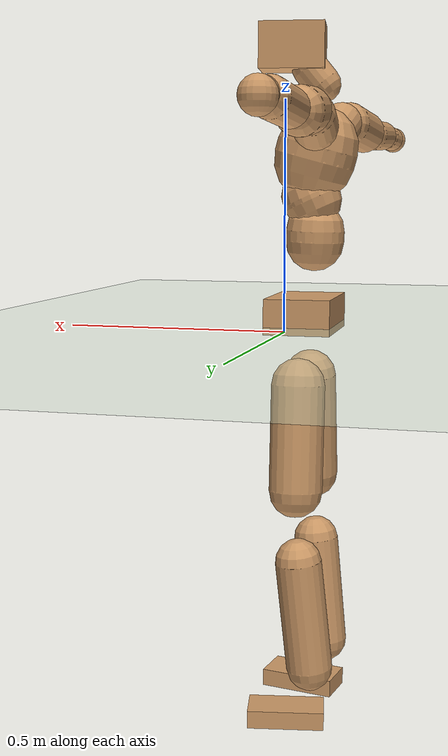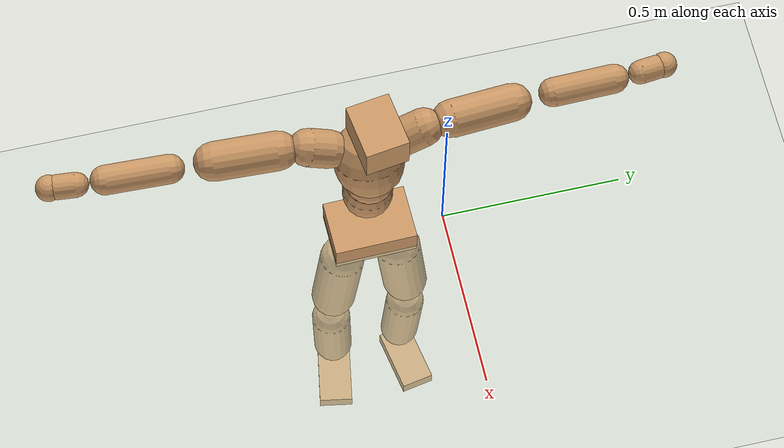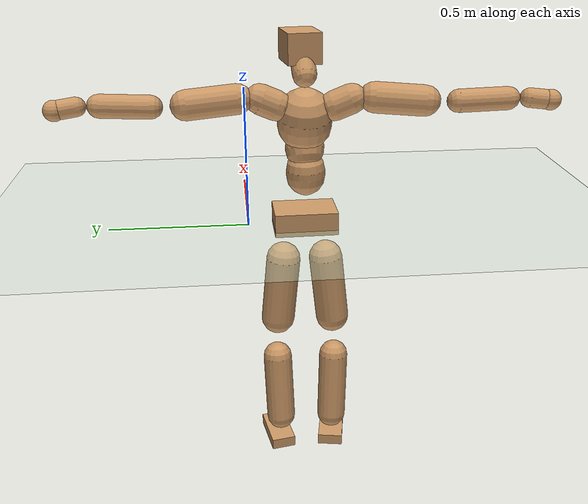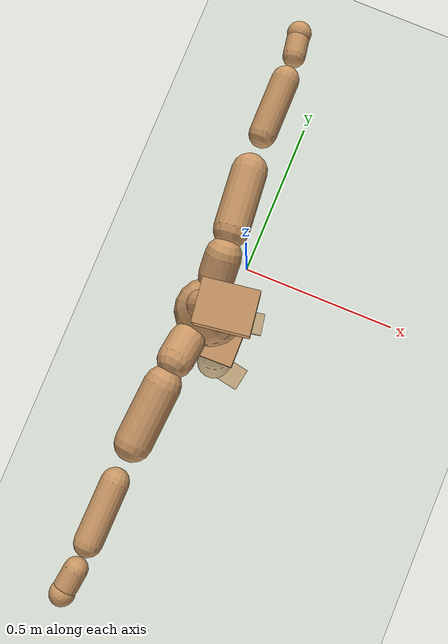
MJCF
<mujoco model="humanoid">
  <compiler coordinate="local" angle="radian"/>
  <default>
    <joint damping="0.0" armature="0.01" stiffness="0.0" limited="true"/>
    <geom conaffinity="1" condim="3" contype="7" margin="0.001" rgba="0.8 0.6 .4 1"/>
  </default>
  <asset>
    <texture type="skybox" builtin="gradient" rgb1=".4 .5 .6" rgb2="0 0 0" width="100" height="100"/>
    <texture builtin="flat" height="1278" mark="cross" markrgb="1 1 1" name="texgeom" random="0.01" rgb1="0.8 0.6 0.4" rgb2="0.8 0.6 0.4" type="cube" width="127"/>
    <texture builtin="checker" height="100" name="texplane" rgb1="0 0 0" rgb2="0.8 0.8 0.8" type="2d" width="100"/>
    <material name="MatPlane" reflectance="0.5" shininess="1" specular="1" texrepeat="60 60" texture="texplane"/>
    <material name="geom" texture="texgeom" texuniform="true"/>
  </asset>
  <worldbody>
    <light cutoff="100" diffuse="1 1 1" dir="-0 0 -1.3" directional="true" exponent="1" pos="0 0 1.3" specular=".1 .1 .1"/>
    <geom conaffinity="1" condim="3" name="floor" pos="0 0 0" rgba="0.8 0.9 0.8 1" size="100 100 .2" type="plane" material="MatPlane"/>
    <body name="Pelvis" pos="0.0015 -0.2041 0.0339">
      <freejoint name="Pelvis"/>
      <geom type="box" contype="1" conaffinity="1" density="500" pos="-0.0059 -0.0001 -0.0123" size="0.0769 0.1134 0.0412" quat="1.0000 0.0000 0.0000 0.0090" name="Pelvis"/>
      <body name="L_Hip" pos="-0.0069 0.0721 -0.09">
        <joint name="L_Hip_x" type="hinge" pos="0 0 0" axis="1 0 0" stiffness="800" damping="80" armature="0.02" range="-180.0000 180.0000"/>
        <joint name="L_Hip_y" type="hinge" pos="0 0 0" axis="0 1 0" stiffness="800" damping="80" armature="0.02" range="-180.0000 180.0000"/>
        <joint name="L_Hip_z" type="hinge" pos="0 0 0" axis="0 0 1" stiffness="800" damping="80" armature="0.02" range="-180.0000 180.0000"/>
        <geom type="capsule" contype="1" conaffinity="1" density="500" fromto="-0.0003 0.0080 -0.0822 -0.0011 0.0319 -0.3288" size="0.063" name="L_Hip"/>
        <body name="L_Knee" pos="-0.0014 0.0398 -0.411">
          <joint name="L_Knee_x" type="hinge" pos="0 0 0" axis="1 0 0" stiffness="800" damping="80" armature="0.02" range="-180.0000 180.0000"/>
          <joint name="L_Knee_y" type="hinge" pos="0 0 0" axis="0 1 0" stiffness="800" damping="80" armature="0.02" range="-180.0000 180.0000"/>
          <joint name="L_Knee_z" type="hinge" pos="0 0 0" axis="0 0 1" stiffness="800" damping="80" armature="0.02" range="-180.0000 180.0000"/>
          <geom type="capsule" contype="1" conaffinity="1" density="500" fromto="-0.0090 -0.0026 -0.0876 -0.0361 -0.0103 -0.3502" size="0.0547" name="L_Knee"/>
          <body name="L_Ankle" pos="-0.0451 -0.0129 -0.4378">
            <joint name="L_Ankle_x" type="hinge" pos="0 0 0" axis="1 0 0" stiffness="800" damping="80" armature="0.02" range="-180.0000 180.0000"/>
            <joint name="L_Ankle_y" type="hinge" pos="0 0 0" axis="0 1 0" stiffness="800" damping="80" armature="0.02" range="-180.0000 180.0000"/>
            <joint name="L_Ankle_z" type="hinge" pos="0 0 0" axis="0 0 1" stiffness="800" damping="80" armature="0.02" range="-180.0000 180.0000"/>
            <geom type="box" contype="1" conaffinity="1" density="500" pos="0.0634 0.0116 -0.0308" size="0.0907 0.0463 0.0213" quat="0.9959 0.0000 0.0000 0.0902" name="L_Ankle"/>
            <body name="L_Toe" pos="0.1267 0.0231 -0.0616">
              <joint name="L_Toe_x" type="hinge" pos="0 0 0" axis="1 0 0" stiffness="500" damping="50" armature="0.02" range="-180.0000 180.0000"/>
              <joint name="L_Toe_y" type="hinge" pos="0 0 0" axis="0 1 0" stiffness="500" damping="50" armature="0.02" range="-180.0000 180.0000"/>
              <joint name="L_Toe_z" type="hinge" pos="0 0 0" axis="0 0 1" stiffness="500" damping="50" armature="0.02" range="-180.0000 180.0000"/>
              <geom type="box" contype="1" conaffinity="1" density="500" pos="0.0000 0.0000 0.0310" size="0.0009 0.0023 0.0011" quat="0.9954 0.0000 0.0000 0.0963" name="L_Toe"/>
            </body>
          </body>
        </body>
      </body>
      <body name="R_Hip" pos="-0.0036 -0.0694 -0.0883">
        <joint name="R_Hip_x" type="hinge" pos="0 0 0" axis="1 0 0" stiffness="800" damping="80" armature="0.02" range="-180.0000 180.0000"/>
        <joint name="R_Hip_y" type="hinge" pos="0 0 0" axis="0 1 0" stiffness="800" damping="80" armature="0.02" range="-180.0000 180.0000"/>
        <joint name="R_Hip_z" type="hinge" pos="0 0 0" axis="0 0 1" stiffness="800" damping="80" armature="0.02" range="-180.0000 180.0000"/>
        <geom type="capsule" contype="1" conaffinity="1" density="500" fromto="-0.0008 -0.0091 -0.0838 -0.0033 -0.0363 -0.3352" size="0.0621" name="R_Hip"/>
        <body name="R_Knee" pos="-0.0042 -0.0454 -0.419">
          <joint name="R_Knee_x" type="hinge" pos="0 0 0" axis="1 0 0" stiffness="800" damping="80" armature="0.02" range="-180.0000 180.0000"/>
          <joint name="R_Knee_y" type="hinge" pos="0 0 0" axis="0 1 0" stiffness="800" damping="80" armature="0.02" range="-180.0000 180.0000"/>
          <joint name="R_Knee_z" type="hinge" pos="0 0 0" axis="0 0 1" stiffness="800" damping="80" armature="0.02" range="-180.0000 180.0000"/>
          <geom type="capsule" contype="1" conaffinity="1" density="500" fromto="-0.0087 0.0032 -0.0876 -0.0349 0.0126 -0.3504" size="0.0551" name="R_Knee"/>
          <body name="R_Ankle" pos="-0.0436 0.0158 -0.438">
            <joint name="R_Ankle_x" type="hinge" pos="0 0 0" axis="1 0 0" stiffness="800" damping="80" armature="0.02" range="-180.0000 180.0000"/>
            <joint name="R_Ankle_y" type="hinge" pos="0 0 0" axis="0 1 0" stiffness="800" damping="80" armature="0.02" range="-180.0000 180.0000"/>
            <joint name="R_Ankle_z" type="hinge" pos="0 0 0" axis="0 0 1" stiffness="800" damping="80" armature="0.02" range="-180.0000 180.0000"/>
            <geom type="box" contype="1" conaffinity="1" density="500" pos="0.0650 -0.0115 -0.0256" size="0.0914 0.0479 0.0211" quat="0.9962 0.0000 0.0000 -0.0876" name="R_Ankle"/>
            <body name="R_Toe" pos="0.13 -0.023 -0.0511">
              <joint name="R_Toe_x" type="hinge" pos="0 0 0" axis="1 0 0" stiffness="500" damping="50" armature="0.02" range="-180.0000 180.0000"/>
              <joint name="R_Toe_y" type="hinge" pos="0 0 0" axis="0 1 0" stiffness="500" damping="50" armature="0.02" range="-180.0000 180.0000"/>
              <joint name="R_Toe_z" type="hinge" pos="0 0 0" axis="0 0 1" stiffness="500" damping="50" armature="0.02" range="-180.0000 180.0000"/>
              <geom type="box" contype="1" conaffinity="1" density="500" pos="0.0000 0.0000 0.0284" size="0.0008 0.0024 0.0012" quat="0.9969 0.0000 0.0000 -0.0790" name="R_Toe"/>
            </body>
          </body>
        </body>
      </body>
      <body name="Torso" pos="-0.025 -0.0034 0.1043">
        <joint name="Torso_x" type="hinge" pos="0 0 0" axis="1 0 0" stiffness="1000" damping="100" armature="0.02" range="-180.0000 180.0000"/>
        <joint name="Torso_y" type="hinge" pos="0 0 0" axis="0 1 0" stiffness="1000" damping="100" armature="0.02" range="-180.0000 180.0000"/>
        <joint name="Torso_z" type="hinge" pos="0 0 0" axis="0 0 1" stiffness="1000" damping="100" armature="0.02" range="-180.0000 180.0000"/>
        <geom type="capsule" contype="1" conaffinity="1" density="500" fromto="-0.0031 0.0018 0.0771 -0.0021 0.0012 0.0514" size="0.0683" name="Torso"/>
        <body name="Spine" pos="-0.0052 0.0031 0.1285">
          <joint name="Spine_x" type="hinge" pos="0 0 0" axis="1 0 0" stiffness="1000" damping="100" armature="0.02" range="-180.0000 180.0000"/>
          <joint name="Spine_y" type="hinge" pos="0 0 0" axis="0 1 0" stiffness="1000" damping="100" armature="0.02" range="-180.0000 180.0000"/>
          <joint name="Spine_z" type="hinge" pos="0 0 0" axis="0 0 1" stiffness="1000" damping="100" armature="0.02" range="-180.0000 180.0000"/>
          <geom type="capsule" contype="1" conaffinity="1" density="500" fromto="0.0134 0.0012 0.0291 0.0090 0.0008 0.0194" size="0.0684" name="Spine"/>
          <body name="Chest" pos="0.0224 0.002 0.0486">
            <joint name="Chest_x" type="hinge" pos="0 0 0" axis="1 0 0" stiffness="1000" damping="100" armature="0.02" range="-180.0000 180.0000"/>
            <joint name="Chest_y" type="hinge" pos="0 0 0" axis="0 1 0" stiffness="1000" damping="100" armature="0.02" range="-180.0000 180.0000"/>
            <joint name="Chest_z" type="hinge" pos="0 0 0" axis="0 0 1" stiffness="1000" damping="100" armature="0.02" range="-180.0000 180.0000"/>
            <geom type="capsule" contype="1" conaffinity="1" density="500" fromto="-0.0253 -0.0005 0.0924 -0.0169 -0.0003 0.0616" size="0.0946" name="Chest"/>
            <body name="Neck" pos="-0.0463 -0.0008 0.2191">
              <joint name="Neck_x" type="hinge" pos="0 0 0" axis="1 0 0" stiffness="500" damping="50" armature="0.02" range="-180.0000 180.0000"/>
              <joint name="Neck_y" type="hinge" pos="0 0 0" axis="0 1 0" stiffness="500" damping="50" armature="0.02" range="-180.0000 180.0000"/>
              <joint name="Neck_z" type="hinge" pos="0 0 0" axis="0 0 1" stiffness="500" damping="50" armature="0.02" range="-180.0000 180.0000"/>
              <geom type="capsule" contype="1" conaffinity="1" density="500" fromto="0.0104 0.0012 0.0126 0.0417 0.0046 0.0504" size="0.0416" name="Neck"/>
              <body name="Head" pos="0.0522 0.0058 0.063">
                <joint name="Head_x" type="hinge" pos="0 0 0" axis="1 0 0" stiffness="500" damping="50" armature="0.02" range="-180.0000 180.0000"/>
                <joint name="Head_y" type="hinge" pos="0 0 0" axis="0 1 0" stiffness="500" damping="50" armature="0.02" range="-180.0000 180.0000"/>
                <joint name="Head_z" type="hinge" pos="0 0 0" axis="0 0 1" stiffness="500" damping="50" armature="0.02" range="-180.0000 180.0000"/>
                <geom type="box" contype="1" conaffinity="1" density="500" pos="0.0271 0.0039 0.0325" size="0.0746 0.0585 0.0515" quat="0.9974 0.0000 0.0000 0.0715" name="Head"/>
              </body>
            </body>
            <body name="L_Thorax" pos="-0.037 0.0784 0.1231">
              <joint name="L_Thorax_x" type="hinge" pos="0 0 0" axis="1 0 0" stiffness="500" damping="50" armature="0.02" range="-180.0000 180.0000"/>
              <joint name="L_Thorax_y" type="hinge" pos="0 0 0" axis="0 1 0" stiffness="500" damping="50" armature="0.02" range="-180.0000 180.0000"/>
              <joint name="L_Thorax_z" type="hinge" pos="0 0 0" axis="0 0 1" stiffness="500" damping="50" armature="0.02" range="-180.0000 180.0000"/>
              <geom type="capsule" contype="1" conaffinity="1" density="500" fromto="-0.0008 0.0180 0.0080 -0.0030 0.0721 0.0319" size="0.0519" name="L_Thorax"/>
              <body name="L_Shoulder" pos="-0.0038 0.0901 0.0399">
                <joint name="L_Shoulder_x" type="hinge" pos="0 0 0" axis="1 0 0" stiffness="500" damping="50" armature="0.02" range="-720.0000 720.0000"/>
                <joint name="L_Shoulder_y" type="hinge" pos="0 0 0" axis="0 1 0" stiffness="500" damping="50" armature="0.02" range="-720.0000 720.0000"/>
                <joint name="L_Shoulder_z" type="hinge" pos="0 0 0" axis="0 0 1" stiffness="500" damping="50" armature="0.02" range="-720.0000 720.0000"/>
                <geom type="capsule" contype="1" conaffinity="1" density="500" fromto="-0.0058 0.0569 -0.0043 -0.0232 0.2276 -0.0171" size="0.051" name="L_Shoulder"/>
                <body name="L_Elbow" pos="-0.029 0.2846 -0.0213">
                  <joint name="L_Elbow_x" type="hinge" pos="0 0 0" axis="1 0 0" stiffness="500" damping="50" armature="0.02" range="-720.0000 720.0000"/>
                  <joint name="L_Elbow_y" type="hinge" pos="0 0 0" axis="0 1 0" stiffness="500" damping="50" armature="0.02" range="-720.0000 720.0000"/>
                  <joint name="L_Elbow_z" type="hinge" pos="0 0 0" axis="0 0 1" stiffness="500" damping="50" armature="0.02" range="-720.0000 720.0000"/>
                  <geom type="capsule" contype="1" conaffinity="1" density="500" fromto="0.0001 0.0548 0.0025 0.0004 0.2193 0.0099" size="0.0393" name="L_Elbow"/>
                  <body name="L_Wrist" pos="0.0005 0.2741 0.0124">
                    <joint name="L_Wrist_x" type="hinge" pos="0 0 0" axis="1 0 0" stiffness="300" damping="30" armature="0.02" range="-180.0000 180.0000"/>
                    <joint name="L_Wrist_y" type="hinge" pos="0 0 0" axis="0 1 0" stiffness="300" damping="30" armature="0.02" range="-180.0000 180.0000"/>
                    <joint name="L_Wrist_z" type="hinge" pos="0 0 0" axis="0 0 1" stiffness="300" damping="30" armature="0.02" range="-180.0000 180.0000"/>
                    <geom type="capsule" contype="1" conaffinity="1" density="500" fromto="-0.0029 0.0173 -0.0022 -0.0117 0.0691 -0.0086" size="0.032" name="L_Wrist"/>
                    <body name="L_Hand" pos="-0.0146 0.0864 -0.0108">
                      <joint name="L_Hand_x" type="hinge" pos="0 0 0" axis="1 0 0" stiffness="300" damping="30" armature="0.02" range="-180.0000 180.0000"/>
                      <joint name="L_Hand_y" type="hinge" pos="0 0 0" axis="0 1 0" stiffness="300" damping="30" armature="0.02" range="-180.0000 180.0000"/>
                      <joint name="L_Hand_z" type="hinge" pos="0 0 0" axis="0 0 1" stiffness="300" damping="30" armature="0.02" range="-180.0000 180.0000"/>
                      <geom type="sphere" contype="1" conaffinity="1" density="500" size="0.0346" pos="0.0000 0.0000 0.0000" name="L_Hand"/>
                    </body>
                  </body>
                </body>
              </body>
            </body>
            <body name="R_Thorax" pos="-0.0435 -0.0802 0.1197">
              <joint name="R_Thorax_x" type="hinge" pos="0 0 0" axis="1 0 0" stiffness="500" damping="50" armature="0.02" range="-180.0000 180.0000"/>
              <joint name="R_Thorax_y" type="hinge" pos="0 0 0" axis="0 1 0" stiffness="500" damping="50" armature="0.02" range="-180.0000 180.0000"/>
              <joint name="R_Thorax_z" type="hinge" pos="0 0 0" axis="0 0 1" stiffness="500" damping="50" armature="0.02" range="-180.0000 180.0000"/>
              <geom type="capsule" contype="1" conaffinity="1" density="500" fromto="-0.0019 -0.0193 0.0081 -0.0075 -0.0772 0.0324" size="0.0511" name="R_Thorax"/>
              <body name="R_Shoulder" pos="-0.0094 -0.0965 0.0404">
                <joint name="R_Shoulder_x" type="hinge" pos="0 0 0" axis="1 0 0" stiffness="500" damping="50" armature="0.02" range="-720.0000 720.0000"/>
                <joint name="R_Shoulder_y" type="hinge" pos="0 0 0" axis="0 1 0" stiffness="500" damping="50" armature="0.02" range="-720.0000 720.0000"/>
                <joint name="R_Shoulder_z" type="hinge" pos="0 0 0" axis="0 0 1" stiffness="500" damping="50" armature="0.02" range="-720.0000 720.0000"/>
                <geom type="capsule" contype="1" conaffinity="1" density="500" fromto="-0.0044 -0.0570 -0.0042 -0.0175 -0.2281 -0.0167" size="0.0527" name="R_Shoulder"/>
                <body name="R_Elbow" pos="-0.0219 -0.2851 -0.0208">
                  <joint name="R_Elbow_x" type="hinge" pos="0 0 0" axis="1 0 0" stiffness="500" damping="50" armature="0.02" range="-720.0000 720.0000"/>
                  <joint name="R_Elbow_y" type="hinge" pos="0 0 0" axis="0 1 0" stiffness="500" damping="50" armature="0.02" range="-720.0000 720.0000"/>
                  <joint name="R_Elbow_z" type="hinge" pos="0 0 0" axis="0 0 1" stiffness="500" damping="50" armature="0.02" range="-720.0000 720.0000"/>
                  <geom type="capsule" contype="1" conaffinity="1" density="500" fromto="-0.0010 -0.0569 0.0019 -0.0040 -0.2274 0.0077" size="0.0396" name="R_Elbow"/>
                  <body name="R_Wrist" pos="-0.0049 -0.2843 0.0097">
                    <joint name="R_Wrist_x" type="hinge" pos="0 0 0" axis="1 0 0" stiffness="300" damping="30" armature="0.02" range="-180.0000 180.0000"/>
                    <joint name="R_Wrist_y" type="hinge" pos="0 0 0" axis="0 1 0" stiffness="300" damping="30" armature="0.02" range="-180.0000 180.0000"/>
                    <joint name="R_Wrist_z" type="hinge" pos="0 0 0" axis="0 0 1" stiffness="300" damping="30" armature="0.02" range="-180.0000 180.0000"/>
                    <geom type="capsule" contype="1" conaffinity="1" density="500" fromto="-0.0023 -0.0179 -0.0016 -0.0093 -0.0715 -0.0065" size="0.0333" name="R_Wrist"/>
                    <body name="R_Hand" pos="-0.0117 -0.0894 -0.0081">
                      <joint name="R_Hand_x" type="hinge" pos="0 0 0" axis="1 0 0" stiffness="300" damping="30" armature="0.02" range="-180.0000 180.0000"/>
                      <joint name="R_Hand_y" type="hinge" pos="0 0 0" axis="0 1 0" stiffness="300" damping="30" armature="0.02" range="-180.0000 180.0000"/>
                      <joint name="R_Hand_z" type="hinge" pos="0 0 0" axis="0 0 1" stiffness="300" damping="30" armature="0.02" range="-180.0000 180.0000"/>
                      <geom type="sphere" contype="1" conaffinity="1" density="500" size="0.0355" pos="0.0000 0.0000 0.0000" name="R_Hand"/>
                    </body>
                  </body>
                </body>
              </body>
            </body>
          </body>
        </body>
      </body>
    </body>
  </worldbody>
  <actuator>
    <motor name="L_Hip_x" joint="L_Hip_x" gear="500"/>
    <motor name="L_Hip_y" joint="L_Hip_y" gear="500"/>
    <motor name="L_Hip_z" joint="L_Hip_z" gear="500"/>
    <motor name="L_Knee_x" joint="L_Knee_x" gear="500"/>
    <motor name="L_Knee_y" joint="L_Knee_y" gear="500"/>
    <motor name="L_Knee_z" joint="L_Knee_z" gear="500"/>
    <motor name="L_Ankle_x" joint="L_Ankle_x" gear="500"/>
    <motor name="L_Ankle_y" joint="L_Ankle_y" gear="500"/>
    <motor name="L_Ankle_z" joint="L_Ankle_z" gear="500"/>
    <motor name="L_Toe_x" joint="L_Toe_x" gear="500"/>
    <motor name="L_Toe_y" joint="L_Toe_y" gear="500"/>
    <motor name="L_Toe_z" joint="L_Toe_z" gear="500"/>
    <motor name="R_Hip_x" joint="R_Hip_x" gear="500"/>
    <motor name="R_Hip_y" joint="R_Hip_y" gear="500"/>
    <motor name="R_Hip_z" joint="R_Hip_z" gear="500"/>
    <motor name="R_Knee_x" joint="R_Knee_x" gear="500"/>
    <motor name="R_Knee_y" joint="R_Knee_y" gear="500"/>
    <motor name="R_Knee_z" joint="R_Knee_z" gear="500"/>
    <motor name="R_Ankle_x" joint="R_Ankle_x" gear="500"/>
    <motor name="R_Ankle_y" joint="R_Ankle_y" gear="500"/>
    <motor name="R_Ankle_z" joint="R_Ankle_z" gear="500"/>
    <motor name="R_Toe_x" joint="R_Toe_x" gear="500"/>
    <motor name="R_Toe_y" joint="R_Toe_y" gear="500"/>
    <motor name="R_Toe_z" joint="R_Toe_z" gear="500"/>
    <motor name="Torso_x" joint="Torso_x" gear="500"/>
    <motor name="Torso_y" joint="Torso_y" gear="500"/>
    <motor name="Torso_z" joint="Torso_z" gear="500"/>
    <motor name="Spine_x" joint="Spine_x" gear="500"/>
    <motor name="Spine_y" joint="Spine_y" gear="500"/>
    <motor name="Spine_z" joint="Spine_z" gear="500"/>
    <motor name="Chest_x" joint="Chest_x" gear="500"/>
    <motor name="Chest_y" joint="Chest_y" gear="500"/>
    <motor name="Chest_z" joint="Chest_z" gear="500"/>
    <motor name="Neck_x" joint="Neck_x" gear="500"/>
    <motor name="Neck_y" joint="Neck_y" gear="500"/>
    <motor name="Neck_z" joint="Neck_z" gear="500"/>
    <motor name="Head_x" joint="Head_x" gear="500"/>
    <motor name="Head_y" joint="Head_y" gear="500"/>
    <motor name="Head_z" joint="Head_z" gear="500"/>
    <motor name="L_Thorax_x" joint="L_Thorax_x" gear="500"/>
    <motor name="L_Thorax_y" joint="L_Thorax_y" gear="500"/>
    <motor name="L_Thorax_z" joint="L_Thorax_z" gear="500"/>
    <motor name="L_Shoulder_x" joint="L_Shoulder_x" gear="500"/>
    <motor name="L_Shoulder_y" joint="L_Shoulder_y" gear="500"/>
    <motor name="L_Shoulder_z" joint="L_Shoulder_z" gear="500"/>
    <motor name="L_Elbow_x" joint="L_Elbow_x" gear="500"/>
    <motor name="L_Elbow_y" joint="L_Elbow_y" gear="500"/>
    <motor name="L_Elbow_z" joint="L_Elbow_z" gear="500"/>
    <motor name="L_Wrist_x" joint="L_Wrist_x" gear="500"/>
    <motor name="L_Wrist_y" joint="L_Wrist_y" gear="500"/>
    <motor name="L_Wrist_z" joint="L_Wrist_z" gear="500"/>
    <motor name="L_Hand_x" joint="L_Hand_x" gear="500"/>
    <motor name="L_Hand_y" joint="L_Hand_y" gear="500"/>
    <motor name="L_Hand_z" joint="L_Hand_z" gear="500"/>
    <motor name="R_Thorax_x" joint="R_Thorax_x" gear="500"/>
    <motor name="R_Thorax_y" joint="R_Thorax_y" gear="500"/>
    <motor name="R_Thorax_z" joint="R_Thorax_z" gear="500"/>
    <motor name="R_Shoulder_x" joint="R_Shoulder_x" gear="500"/>
    <motor name="R_Shoulder_y" joint="R_Shoulder_y" gear="500"/>
    <motor name="R_Shoulder_z" joint="R_Shoulder_z" gear="500"/>
    <motor name="R_Elbow_x" joint="R_Elbow_x" gear="500"/>
    <motor name="R_Elbow_y" joint="R_Elbow_y" gear="500"/>
    <motor name="R_Elbow_z" joint="R_Elbow_z" gear="500"/>
    <motor name="R_Wrist_x" joint="R_Wrist_x" gear="500"/>
    <motor name="R_Wrist_y" joint="R_Wrist_y" gear="500"/>
    <motor name="R_Wrist_z" joint="R_Wrist_z" gear="500"/>
    <motor name="R_Hand_x" joint="R_Hand_x" gear="500"/>
    <motor name="R_Hand_y" joint="R_Hand_y" gear="500"/>
    <motor name="R_Hand_z" joint="R_Hand_z" gear="500"/>
  </actuator>
  <contact>
    <exclude body1="Torso" body2="Chest"/>
    <exclude body1="Head" body2="Chest"/>
    <exclude body1="R_Knee" body2="R_Toe"/>
    <exclude body1="R_Knee" body2="L_Ankle"/>
    <exclude body1="R_Knee" body2="L_Toe"/>
    <exclude body1="L_Knee" body2="L_Toe"/>
    <exclude body1="L_Knee" body2="R_Ankle"/>
    <exclude body1="L_Knee" body2="R_Toe"/>
    <exclude body1="L_Shoulder" body2="Chest"/>
    <exclude body1="R_Shoulder" body2="Chest"/>
  </contact>
  <sensor/>
  <size njmax="700" nconmax="700"/>
</mujoco>
